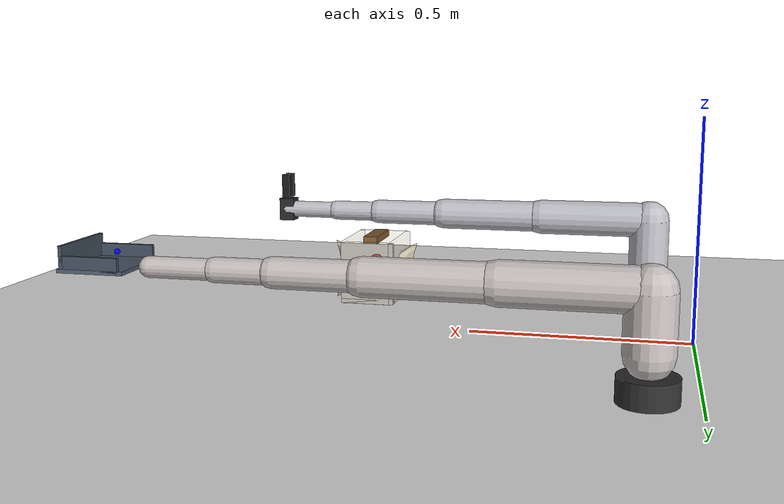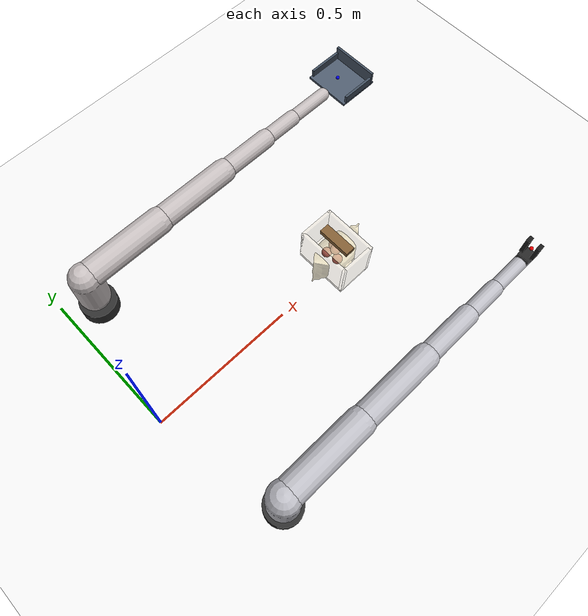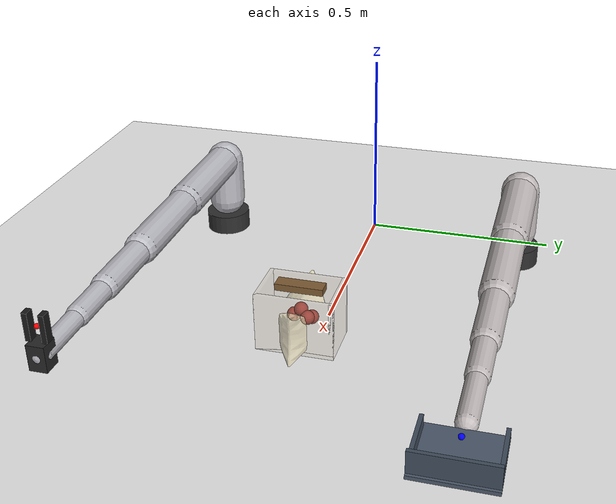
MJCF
<mujoco model="dual_2f_scoop_0330_soft">
  <compiler angle="radian" coordinate="local" meshdir="object" inertiafromgeom="true"/>
  <option timestep="0.002" gravity="0 0 -9.81" integrator="implicitfast" iterations="80" tolerance="1e-8"/>
  <size memory="256M" nconmax="4000"/>

  <asset>
    <mesh name="sack_mesh" file="sack9.obj" scale="0.070 0.070 0.070"/>
  </asset>

  <default>
    <joint armature="0.03" frictionloss="0.02"/>
    <geom condim="4" friction="1.0 0.05 0.01" margin="0.002"/>
    <position kp="900" ctrllimited="true" forcelimited="true" forcerange="-500 500"/>
  </default>

  <worldbody>
    <light pos="0 0 2.2" dir="0 0 -1" diffuse="0.8 0.8 0.8"/>
    <geom name="ground" type="plane" size="2 2 0.1" rgba="0.92 0.92 0.92 1"/>
    <camera name="overview" pos="1.35 0 0.95" xyaxes="0 1 0 -0.45 0 0.89"/>

    <body name="left_base" pos="0.1 -0.42 0.0">
      <geom type="cylinder" size="0.060 0.050" rgba="0.18 0.18 0.18 1"/>
      <body name="left_link1" pos="0 0 0.090">
        <joint name="left_j1" type="hinge" axis="0 0 1" range="-3.14 3.14" damping="6"/>
        <geom type="capsule" fromto="0 0 0 0 0 0.120" size="0.050" rgba="0.73 0.73 0.76 1"/>
        <body name="left_link2" pos="0 0 0.120">
          <joint name="left_j2" type="hinge" axis="0 1 0" range="-2.4 2.4" damping="6"/>
          <geom type="capsule" fromto="0 0 0 0.280 0 0" size="0.045" rgba="0.73 0.73 0.76 1"/>
          <body name="left_link3" pos="0.280 0 0">
            <joint name="left_j3" type="hinge" axis="0 1 0" range="-2.8 2.8" damping="5"/>
            <geom type="capsule" fromto="0 0 0 0.260 0 0" size="0.040" rgba="0.73 0.73 0.76 1"/>
            <body name="left_link4" pos="0.260 0 0">
              <joint name="left_j4" type="hinge" axis="0 1 0" range="-3.14 3.14" damping="4"/>
              <geom type="capsule" fromto="0 0 0 0.180 0 0" size="0.032" rgba="0.73 0.73 0.76 1"/>
              <body name="left_link5" pos="0.180 0 0">
                <joint name="left_j5" type="hinge" axis="0 0 1" range="-3.14 3.14" damping="3"/>
                <geom type="capsule" fromto="0 0 0 0.120 0 0" size="0.026" rgba="0.73 0.73 0.76 1"/>
                <body name="left_link6" pos="0.120 0 0">
                  <joint name="left_j6" type="hinge" axis="0 1 0" range="-3.14 3.14" damping="2"/>
                  <geom type="capsule" fromto="0 0 0 0.140 0 0" size="0.022" rgba="0.73 0.73 0.76 1"/>

                  <body name="left_tool" pos="0.14 0 0">
                    <geom type="box" size="0.020 0.020 0.030" rgba="0.15 0.15 0.15 1"/>
                    <body name="left_finger_l_body" pos="0 0 0.065">
                      <joint name="left_finger_l" type="slide" axis="0 1 0" limited="true" range="0.012 0.040" damping="8"/>
                      <geom type="box" pos="0 0.018 0" size="0.010 0.006 0.032" rgba="0.10 0.10 0.10 1" friction="2.0 0.05 0.01"/>
                    </body>
                    <body name="left_finger_r_body" pos="0 0 0.065">
                      <joint name="left_finger_r" type="slide" axis="0 -1 0" limited="true" range="0.012 0.040" damping="8"/>
                      <geom type="box" pos="0 -0.018 0" size="0.010 0.006 0.032" rgba="0.10 0.10 0.10 1" friction="2.0 0.05 0.01"/>
                    </body>
                    <site name="left_grip_site" pos="0 0 0.065" size="0.006" rgba="1 0 0 1"/>
                  </body>

                </body>
              </body>
            </body>
          </body>
        </body>
      </body>
    </body>

    <body name="right_base" pos="0.1 0.42 0.0">
      <geom type="cylinder" size="0.060 0.050" rgba="0.18 0.18 0.18 1"/>
      <body name="right_link1" pos="0 0 0.090">
        <joint name="right_j1" type="hinge" axis="0 0 1" range="-3.14 3.14" damping="6"/>
        <geom type="capsule" fromto="0 0 0 0 0 0.120" size="0.050" rgba="0.76 0.73 0.73 1"/>
        <body name="right_link2" pos="0 0 0.120">
          <joint name="right_j2" type="hinge" axis="0 1 0" range="-2.4 2.4" damping="6"/>
          <geom type="capsule" fromto="0 0 0 0.280 0 0" size="0.045" rgba="0.76 0.73 0.73 1"/>
          <body name="right_link3" pos="0.280 0 0">
            <joint name="right_j3" type="hinge" axis="0 1 0" range="-2.8 2.8" damping="5"/>
            <geom type="capsule" fromto="0 0 0 0.260 0 0" size="0.040" rgba="0.76 0.73 0.73 1"/>
            <body name="right_link4" pos="0.260 0 0">
              <joint name="right_j4" type="hinge" axis="0 1 0" range="-3.14 3.14" damping="4"/>
              <geom type="capsule" fromto="0 0 0 0.180 0 0" size="0.032" rgba="0.76 0.73 0.73 1"/>
              <body name="right_link5" pos="0.180 0 0">
                <joint name="right_j5" type="hinge" axis="0 0 1" range="-3.14 3.14" damping="3"/>
                <geom type="capsule" fromto="0 0 0 0.120 0 0" size="0.026" rgba="0.76 0.73 0.73 1"/>
                <body name="right_link6" pos="0.120 0 0">
                  <joint name="right_j6" type="hinge" axis="0 1 0" range="-3.14 3.14" damping="2"/>
                  <geom type="capsule" fromto="0 0 0 0.140 0 0" size="0.022" rgba="0.76 0.73 0.73 1"/>

                  <body name="right_scoop" pos="0.16 0 0">
                    <geom type="box" pos="0.070 0 0" size="0.070 0.080 0.004" rgba="0.30 0.35 0.42 1" friction="1.2 0.05 0.01"/>
                    <geom type="box" pos="0.130 0 0.025" size="0.004 0.080 0.025" rgba="0.25 0.30 0.36 1" friction="1.2 0.05 0.01"/>
                    <geom type="box" pos="0.070 0.076 0.015" size="0.060 0.004 0.015" rgba="0.25 0.30 0.36 1" friction="1.2 0.05 0.01"/>
                    <geom type="box" pos="0.070 -0.076 0.015" size="0.060 0.004 0.015" rgba="0.25 0.30 0.36 1" friction="1.2 0.05 0.01"/>
                    <site name="right_scoop_site" pos="0.050 0 0.028" size="0.006" rgba="0 0 1 1"/>
                  </body>

                </body>
              </body>
            </body>
          </body>
        </body>
      </body>
    </body>

    <body name="band" pos="0.720000 0.000000 0.215000">
      <freejoint name="band_free"/>
      <geom name="grasp_band" type="box" size="0.016000 0.055000 0.008000" mass="0.10" rgba="0.50 0.36 0.20 1" friction="2.0 0.05 0.01"/>
      <site name="handle_grasp_site" pos="0 0 0" size="0.008" rgba="1 0 0 1"/>
    </body>

    <body name="sack" pos="0.720000 0.000000 0.135000">
      <freejoint name="sack_free"/>
      <geom name="sack_visual" type="mesh" mesh="sack_mesh" rgba="0.90 0.85 0.70 0.70" contype="0" conaffinity="0"/>
      <geom name="sack_bottom" type="box" pos="0 0 -0.055" size="0.060 0.090 0.005" mass="0.10" rgba="0.75 0.67 0.52 0.20"/>
      <geom name="sack_wall_l" type="box" pos="0 0.085 0.010" size="0.060 0.005 0.070" mass="0.08" rgba="0.75 0.67 0.52 0.18"/>
      <geom name="sack_wall_r" type="box" pos="0 -0.085 0.010" size="0.060 0.005 0.070" mass="0.08" rgba="0.75 0.67 0.52 0.18"/>
      <geom name="sack_wall_f" type="box" pos="0.055 0 0.010" size="0.005 0.090 0.070" mass="0.08" rgba="0.75 0.67 0.52 0.18"/>
      <geom name="sack_wall_b" type="box" pos="-0.055 0 0.010" size="0.005 0.090 0.070" mass="0.08" rgba="0.75 0.67 0.52 0.18"/>
      <site name="sack_com_site" pos="0 0 0.01" size="0.006" rgba="0 1 0 1"/>

      <body name="payload0" pos="-0.0100 -0.0200 0.0000">
        <joint name="payload0_x" type="slide" axis="1 0 0" limited="true" range="-0.025 0.025" damping="14"/>
        <joint name="payload0_y" type="slide" axis="0 1 0" limited="true" range="-0.040 0.040" damping="14"/>
        <joint name="payload0_z" type="slide" axis="0 0 1" limited="true" range="-0.015 0.050" damping="16"/>
        <geom type="sphere" size="0.016" mass="0.90" rgba="0.62 0.22 0.20 1" contype="0" conaffinity="0"/>
      </body>

      <body name="payload1" pos="0.0120 0.0180 0.0100">
        <joint name="payload1_x" type="slide" axis="1 0 0" limited="true" range="-0.025 0.025" damping="14"/>
        <joint name="payload1_y" type="slide" axis="0 1 0" limited="true" range="-0.040 0.040" damping="14"/>
        <joint name="payload1_z" type="slide" axis="0 0 1" limited="true" range="-0.015 0.050" damping="16"/>
        <geom type="sphere" size="0.016" mass="0.90" rgba="0.62 0.22 0.20 1" contype="0" conaffinity="0"/>
      </body>

      <body name="payload2" pos="0.0000 0.0000 0.0220">
        <joint name="payload2_x" type="slide" axis="1 0 0" limited="true" range="-0.025 0.025" damping="14"/>
        <joint name="payload2_y" type="slide" axis="0 1 0" limited="true" range="-0.040 0.040" damping="14"/>
        <joint name="payload2_z" type="slide" axis="0 0 1" limited="true" range="-0.015 0.050" damping="16"/>
        <geom type="sphere" size="0.016" mass="0.90" rgba="0.62 0.22 0.20 1" contype="0" conaffinity="0"/>
      </body>

      <body name="payload3" pos="-0.0150 0.0200 -0.0050">
        <joint name="payload3_x" type="slide" axis="1 0 0" limited="true" range="-0.025 0.025" damping="14"/>
        <joint name="payload3_y" type="slide" axis="0 1 0" limited="true" range="-0.040 0.040" damping="14"/>
        <joint name="payload3_z" type="slide" axis="0 0 1" limited="true" range="-0.015 0.050" damping="16"/>
        <geom type="sphere" size="0.016" mass="0.90" rgba="0.62 0.22 0.20 1" contype="0" conaffinity="0"/>
      </body>
    </body>
  </worldbody>

  <equality>
    <connect body1="band" body2="sack" anchor="0.732000 0.045000 0.207000" solref="0.025 1" solimp="0.90 0.97 0.002"/>
    <connect body1="band" body2="sack" anchor="0.732000 -0.045000 0.207000" solref="0.025 1" solimp="0.90 0.97 0.002"/>
    <connect body1="band" body2="sack" anchor="0.708000 0.045000 0.207000" solref="0.025 1" solimp="0.90 0.97 0.002"/>
    <connect body1="band" body2="sack" anchor="0.708000 -0.045000 0.207000" solref="0.025 1" solimp="0.90 0.97 0.002"/>
  </equality>

  <actuator>
    <position name="act_left_j1" joint="left_j1" ctrlrange="-3.14 3.14" forcerange="-220 220"/>
    <position name="act_left_j2" joint="left_j2" ctrlrange="-2.4 2.4" forcerange="-220 220"/>
    <position name="act_left_j3" joint="left_j3" ctrlrange="-2.8 2.8" forcerange="-220 220"/>
    <position name="act_left_j4" joint="left_j4" ctrlrange="-3.14 3.14" forcerange="-320 320"/>
    <position name="act_left_j5" joint="left_j5" ctrlrange="-3.14 3.14" forcerange="-240 240"/>
    <position name="act_left_j6" joint="left_j6" ctrlrange="-3.14 3.14" forcerange="-240 240"/>
    <position name="act_right_j1" joint="right_j1" ctrlrange="-3.14 3.14" forcerange="-220 220"/>
    <position name="act_right_j2" joint="right_j2" ctrlrange="-2.4 2.4" forcerange="-220 220"/>
    <position name="act_right_j3" joint="right_j3" ctrlrange="-2.8 2.8" forcerange="-220 220"/>
    <position name="act_right_j4" joint="right_j4" ctrlrange="-3.14 3.14" forcerange="-320 320"/>
    <position name="act_right_j5" joint="right_j5" ctrlrange="-3.14 3.14" forcerange="-240 240"/>
    <position name="act_right_j6" joint="right_j6" ctrlrange="-3.14 3.14" forcerange="-240 240"/>
    <position name="act_left_finger_l" joint="left_finger_l" ctrlrange="0.012 0.040" kp="1400" forcerange="-240 240"/>
    <position name="act_left_finger_r" joint="left_finger_r" ctrlrange="0.012 0.040" kp="1400" forcerange="-240 240"/>
  </actuator>
</mujoco>
